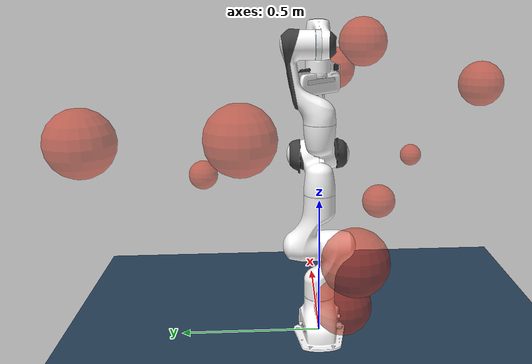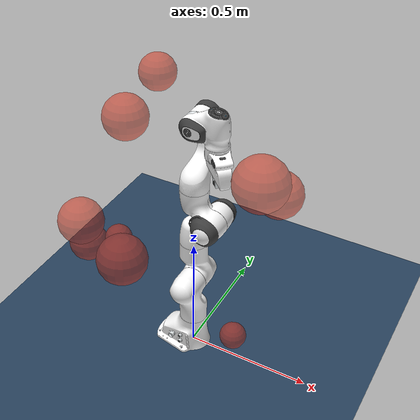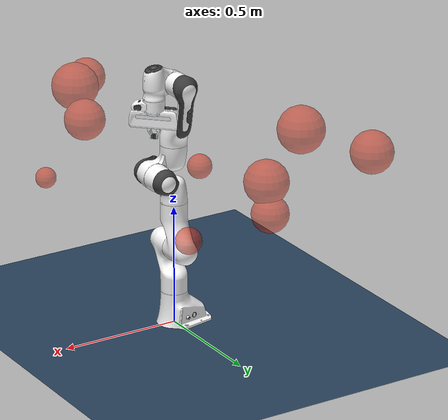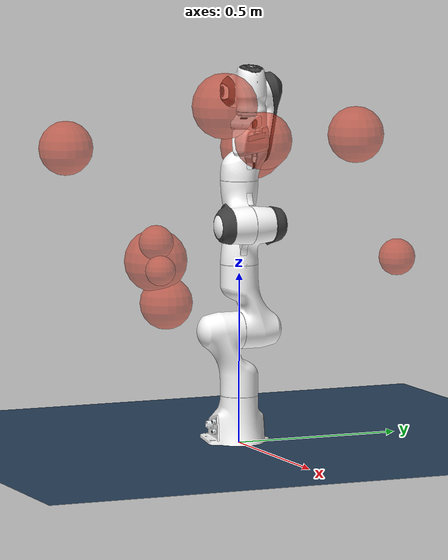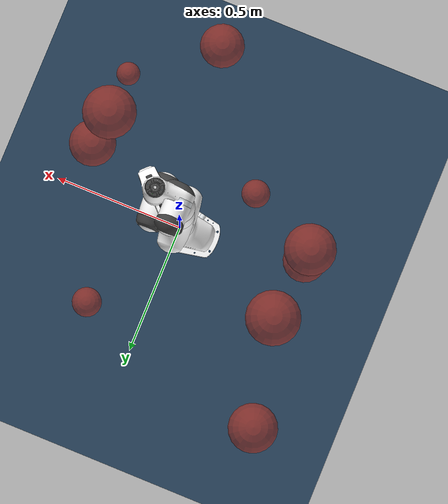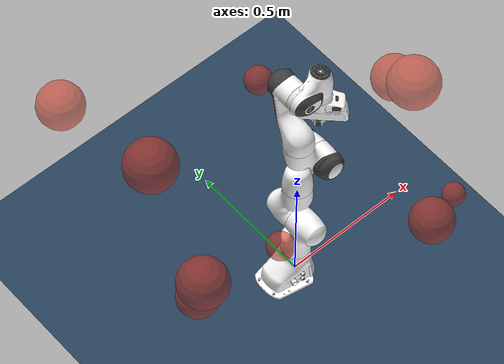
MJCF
<!-- Auto-generated by obstacles/generator.py — do not edit by hand. -->
<mujoco model="panda_with_obstacles">

  <!-- Base scene: floor, lighting, Franka Panda (meshdir override is inside panda_base.xml) -->
  <include file="panda_base.xml"/>

  <!-- Obstacle spheres -->
  <worldbody>
    <geom name="obs_0" type="sphere" size="0.0818" pos="0.3561 -0.0795 0.9227" rgba="0.85 0.2 0.1 0.55" contype="1" conaffinity="1" group="2"/>
    <geom name="obs_1" type="sphere" size="0.0872" pos="-0.5276 0.6183 0.8350" rgba="0.85 0.2 0.1 0.55" contype="1" conaffinity="1" group="2"/>
    <geom name="obs_2" type="sphere" size="0.0956" pos="-0.4835 -0.0645 0.4837" rgba="0.85 0.2 0.1 0.55" contype="1" conaffinity="1" group="2"/>
    <geom name="obs_3" type="sphere" size="0.0536" pos="0.1870 0.4196 0.5491" rgba="0.85 0.2 0.1 0.55" contype="1" conaffinity="1" group="2"/>
    <geom name="obs_4" type="sphere" size="0.0779" pos="0.0710 -0.5670 0.8949" rgba="0.85 0.2 0.1 0.55" contype="1" conaffinity="1" group="2"/>
    <geom name="obs_5" type="sphere" size="0.0936" pos="0.3355 -0.1891 1.0236" rgba="0.85 0.2 0.1 0.55" contype="1" conaffinity="1" group="2"/>
    <geom name="obs_6" type="sphere" size="0.0426" pos="0.3619 -0.3970 0.5700" rgba="0.85 0.2 0.1 0.55" contype="1" conaffinity="1" group="2"/>
    <geom name="obs_7" type="sphere" size="0.0981" pos="-0.4494 0.2380 0.8203" rgba="0.85 0.2 0.1 0.55" contype="1" conaffinity="1" group="2"/>
    <geom name="obs_8" type="sphere" size="0.0514" pos="-0.2264 -0.1684 0.5726" rgba="0.85 0.2 0.1 0.55" contype="1" conaffinity="1" group="2"/>
    <geom name="obs_9" type="sphere" size="0.0802" pos="-0.4811 -0.0316 0.3542" rgba="0.85 0.2 0.1 0.55" contype="1" conaffinity="1" group="2"/>
  </worldbody>

</mujoco>

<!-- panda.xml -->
<mujoco model="panda">
  <compiler angle="radian" meshdir="assets" autolimits="true"/>

  <option integrator="implicitfast"/>

  <default>
    <default class="panda">
      <material specular="0.5" shininess="0.25"/>
      <joint armature="0.1" damping="1" axis="0 0 1" range="-2.8973 2.8973"/>
      <general dyntype="none" biastype="affine" ctrlrange="-2.8973 2.8973" forcerange="-87 87"/>
      <default class="finger">
        <joint axis="0 1 0" type="slide" range="0 0.04"/>
      </default>

      <default class="visual">
        <geom type="mesh" contype="0" conaffinity="0" group="2"/>
      </default>
      <default class="collision">
        <geom type="mesh" group="3"/>
        <default class="fingertip_pad_collision_1">
          <geom type="box" size="0.0085 0.004 0.0085" pos="0 0.0055 0.0445"/>
        </default>
        <default class="fingertip_pad_collision_2">
          <geom type="box" size="0.003 0.002 0.003" pos="0.0055 0.002 0.05"/>
        </default>
        <default class="fingertip_pad_collision_3">
          <geom type="box" size="0.003 0.002 0.003" pos="-0.0055 0.002 0.05"/>
        </default>
        <default class="fingertip_pad_collision_4">
          <geom type="box" size="0.003 0.002 0.0035" pos="0.0055 0.002 0.0395"/>
        </default>
        <default class="fingertip_pad_collision_5">
          <geom type="box" size="0.003 0.002 0.0035" pos="-0.0055 0.002 0.0395"/>
        </default>
      </default>
    </default>
  </default>

  <asset>
    <material class="panda" name="white" rgba="1 1 1 1"/>
    <material class="panda" name="off_white" rgba="0.901961 0.921569 0.929412 1"/>
    <material class="panda" name="black" rgba="0.25 0.25 0.25 1"/>
    <material class="panda" name="green" rgba="0 1 0 1"/>
    <material class="panda" name="light_blue" rgba="0.039216 0.541176 0.780392 1"/>

    <!-- Collision meshes -->
    <mesh name="link0_c" file="link0.stl"/>
    <mesh name="link1_c" file="link1.stl"/>
    <mesh name="link2_c" file="link2.stl"/>
    <mesh name="link3_c" file="link3.stl"/>
    <mesh name="link4_c" file="link4.stl"/>
    <mesh name="link5_c0" file="link5_collision_0.obj"/>
    <mesh name="link5_c1" file="link5_collision_1.obj"/>
    <mesh name="link5_c2" file="link5_collision_2.obj"/>
    <mesh name="link6_c" file="link6.stl"/>
    <mesh name="link7_c" file="link7.stl"/>
    <mesh name="hand_c" file="hand.stl"/>

    <!-- Visual meshes -->
    <mesh file="link0_0.obj"/>
    <mesh file="link0_1.obj"/>
    <mesh file="link0_2.obj"/>
    <mesh file="link0_3.obj"/>
    <mesh file="link0_4.obj"/>
    <mesh file="link0_5.obj"/>
    <mesh file="link0_7.obj"/>
    <mesh file="link0_8.obj"/>
    <mesh file="link0_9.obj"/>
    <mesh file="link0_10.obj"/>
    <mesh file="link0_11.obj"/>
    <mesh file="link1.obj"/>
    <mesh file="link2.obj"/>
    <mesh file="link3_0.obj"/>
    <mesh file="link3_1.obj"/>
    <mesh file="link3_2.obj"/>
    <mesh file="link3_3.obj"/>
    <mesh file="link4_0.obj"/>
    <mesh file="link4_1.obj"/>
    <mesh file="link4_2.obj"/>
    <mesh file="link4_3.obj"/>
    <mesh file="link5_0.obj"/>
    <mesh file="link5_1.obj"/>
    <mesh file="link5_2.obj"/>
    <mesh file="link6_0.obj"/>
    <mesh file="link6_1.obj"/>
    <mesh file="link6_2.obj"/>
    <mesh file="link6_3.obj"/>
    <mesh file="link6_4.obj"/>
    <mesh file="link6_5.obj"/>
    <mesh file="link6_6.obj"/>
    <mesh file="link6_7.obj"/>
    <mesh file="link6_8.obj"/>
    <mesh file="link6_9.obj"/>
    <mesh file="link6_10.obj"/>
    <mesh file="link6_11.obj"/>
    <mesh file="link6_12.obj"/>
    <mesh file="link6_13.obj"/>
    <mesh file="link6_14.obj"/>
    <mesh file="link6_15.obj"/>
    <mesh file="link6_16.obj"/>
    <mesh file="link7_0.obj"/>
    <mesh file="link7_1.obj"/>
    <mesh file="link7_2.obj"/>
    <mesh file="link7_3.obj"/>
    <mesh file="link7_4.obj"/>
    <mesh file="link7_5.obj"/>
    <mesh file="link7_6.obj"/>
    <mesh file="link7_7.obj"/>
    <mesh file="hand_0.obj"/>
    <mesh file="hand_1.obj"/>
    <mesh file="hand_2.obj"/>
    <mesh file="hand_3.obj"/>
    <mesh file="hand_4.obj"/>
    <mesh file="finger_0.obj"/>
    <mesh file="finger_1.obj"/>
  </asset>

  <worldbody>
    <light name="top" pos="0 0 2" mode="trackcom"/>
    <body name="link0" childclass="panda">
      <inertial mass="0.629769" pos="-0.041018 -0.00014 0.049974"
        fullinertia="0.00315 0.00388 0.004285 8.2904e-7 0.00015 8.2299e-6"/>
      <geom mesh="link0_0" material="off_white" class="visual"/>
      <geom mesh="link0_1" material="black" class="visual"/>
      <geom mesh="link0_2" material="off_white" class="visual"/>
      <geom mesh="link0_3" material="black" class="visual"/>
      <geom mesh="link0_4" material="off_white" class="visual"/>
      <geom mesh="link0_5" material="black" class="visual"/>
      <geom mesh="link0_7" material="white" class="visual"/>
      <geom mesh="link0_8" material="white" class="visual"/>
      <geom mesh="link0_9" material="black" class="visual"/>
      <geom mesh="link0_10" material="off_white" class="visual"/>
      <geom mesh="link0_11" material="white" class="visual"/>
      <geom mesh="link0_c" class="collision"/>
      <body name="link1" pos="0 0 0.333">
        <inertial mass="4.970684" pos="0.003875 0.002081 -0.04762"
          fullinertia="0.70337 0.70661 0.0091170 -0.00013900 0.0067720 0.019169"/>
        <joint name="joint1"/>
        <geom material="white" mesh="link1" class="visual"/>
        <geom mesh="link1_c" class="collision"/>
        <body name="link2" quat="1 -1 0 0">
          <inertial mass="0.646926" pos="-0.003141 -0.02872 0.003495"
            fullinertia="0.0079620 2.8110e-2 2.5995e-2 -3.925e-3 1.0254e-2 7.04e-4"/>
          <joint name="joint2" range="-1.7628 1.7628"/>
          <geom material="white" mesh="link2" class="visual"/>
          <geom mesh="link2_c" class="collision"/>
          <body name="link3" pos="0 -0.316 0" quat="1 1 0 0">
            <joint name="joint3"/>
            <inertial mass="3.228604" pos="2.7518e-2 3.9252e-2 -6.6502e-2"
              fullinertia="3.7242e-2 3.6155e-2 1.083e-2 -4.761e-3 -1.1396e-2 -1.2805e-2"/>
            <geom mesh="link3_0" material="white" class="visual"/>
            <geom mesh="link3_1" material="white" class="visual"/>
            <geom mesh="link3_2" material="white" class="visual"/>
            <geom mesh="link3_3" material="black" class="visual"/>
            <geom mesh="link3_c" class="collision"/>
            <body name="link4" pos="0.0825 0 0" quat="1 1 0 0">
              <inertial mass="3.587895" pos="-5.317e-2 1.04419e-1 2.7454e-2"
                fullinertia="2.5853e-2 1.9552e-2 2.8323e-2 7.796e-3 -1.332e-3 8.641e-3"/>
              <joint name="joint4" range="-3.0718 -0.0698"/>
              <geom mesh="link4_0" material="white" class="visual"/>
              <geom mesh="link4_1" material="white" class="visual"/>
              <geom mesh="link4_2" material="black" class="visual"/>
              <geom mesh="link4_3" material="white" class="visual"/>
              <geom mesh="link4_c" class="collision"/>
              <body name="link5" pos="-0.0825 0.384 0" quat="1 -1 0 0">
                <inertial mass="1.225946" pos="-1.1953e-2 4.1065e-2 -3.8437e-2"
                  fullinertia="3.5549e-2 2.9474e-2 8.627e-3 -2.117e-3 -4.037e-3 2.29e-4"/>
                <joint name="joint5"/>
                <geom mesh="link5_0" material="black" class="visual"/>
                <geom mesh="link5_1" material="white" class="visual"/>
                <geom mesh="link5_2" material="white" class="visual"/>
                <geom mesh="link5_c0" class="collision"/>
                <geom mesh="link5_c1" class="collision"/>
                <geom mesh="link5_c2" class="collision"/>
                <body name="link6" quat="1 1 0 0">
                  <inertial mass="1.666555" pos="6.0149e-2 -1.4117e-2 -1.0517e-2"
                    fullinertia="1.964e-3 4.354e-3 5.433e-3 1.09e-4 -1.158e-3 3.41e-4"/>
                  <joint name="joint6" range="-0.0175 3.7525"/>
                  <geom mesh="link6_0" material="off_white" class="visual"/>
                  <geom mesh="link6_1" material="white" class="visual"/>
                  <geom mesh="link6_2" material="black" class="visual"/>
                  <geom mesh="link6_3" material="white" class="visual"/>
                  <geom mesh="link6_4" material="white" class="visual"/>
                  <geom mesh="link6_5" material="white" class="visual"/>
                  <geom mesh="link6_6" material="white" class="visual"/>
                  <geom mesh="link6_7" material="light_blue" class="visual"/>
                  <geom mesh="link6_8" material="light_blue" class="visual"/>
                  <geom mesh="link6_9" material="black" class="visual"/>
                  <geom mesh="link6_10" material="black" class="visual"/>
                  <geom mesh="link6_11" material="white" class="visual"/>
                  <geom mesh="link6_12" material="green" class="visual"/>
                  <geom mesh="link6_13" material="white" class="visual"/>
                  <geom mesh="link6_14" material="black" class="visual"/>
                  <geom mesh="link6_15" material="black" class="visual"/>
                  <geom mesh="link6_16" material="white" class="visual"/>
                  <geom mesh="link6_c" class="collision"/>
                  <body name="link7" pos="0.088 0 0" quat="1 1 0 0">
                    <inertial mass="7.35522e-01" pos="1.0517e-2 -4.252e-3 6.1597e-2"
                      fullinertia="1.2516e-2 1.0027e-2 4.815e-3 -4.28e-4 -1.196e-3 -7.41e-4"/>
                    <joint name="joint7"/>
                    <geom mesh="link7_0" material="white" class="visual"/>
                    <geom mesh="link7_1" material="black" class="visual"/>
                    <geom mesh="link7_2" material="black" class="visual"/>
                    <geom mesh="link7_3" material="black" class="visual"/>
                    <geom mesh="link7_4" material="black" class="visual"/>
                    <geom mesh="link7_5" material="black" class="visual"/>
                    <geom mesh="link7_6" material="black" class="visual"/>
                    <geom mesh="link7_7" material="white" class="visual"/>
                    <geom mesh="link7_c" class="collision"/>
                    <body name="hand" pos="0 0 0.107" quat="0.9238795 0 0 -0.3826834">
                      <inertial mass="0.73" pos="-0.01 0 0.03" diaginertia="0.001 0.0025 0.0017"/>
                      <geom mesh="hand_0" material="off_white" class="visual"/>
                      <geom mesh="hand_1" material="black" class="visual"/>
                      <geom mesh="hand_2" material="black" class="visual"/>
                      <geom mesh="hand_3" material="white" class="visual"/>
                      <geom mesh="hand_4" material="off_white" class="visual"/>
                      <geom mesh="hand_c" class="collision"/>
                      <body name="left_finger" pos="0 0 0.0584">
                        <inertial mass="0.015" pos="0 0 0" diaginertia="2.375e-6 2.375e-6 7.5e-7"/>
                        <joint name="finger_joint1" class="finger"/>
                        <geom mesh="finger_0" material="off_white" class="visual"/>
                        <geom mesh="finger_1" material="black" class="visual"/>
                        <geom mesh="finger_0" class="collision"/>
                        <geom class="fingertip_pad_collision_1"/>
                        <geom class="fingertip_pad_collision_2"/>
                        <geom class="fingertip_pad_collision_3"/>
                        <geom class="fingertip_pad_collision_4"/>
                        <geom class="fingertip_pad_collision_5"/>
                      </body>
                      <body name="right_finger" pos="0 0 0.0584" quat="0 0 0 1">
                        <inertial mass="0.015" pos="0 0 0" diaginertia="2.375e-6 2.375e-6 7.5e-7"/>
                        <joint name="finger_joint2" class="finger"/>
                        <geom mesh="finger_0" material="off_white" class="visual"/>
                        <geom mesh="finger_1" material="black" class="visual"/>
                        <geom mesh="finger_0" class="collision"/>
                        <geom class="fingertip_pad_collision_1"/>
                        <geom class="fingertip_pad_collision_2"/>
                        <geom class="fingertip_pad_collision_3"/>
                        <geom class="fingertip_pad_collision_4"/>
                        <geom class="fingertip_pad_collision_5"/>
                      </body>
                    </body>
                  </body>
                </body>
              </body>
            </body>
          </body>
        </body>
      </body>
    </body>
  </worldbody>

  <tendon>
    <fixed name="split">
      <joint joint="finger_joint1" coef="0.5"/>
      <joint joint="finger_joint2" coef="0.5"/>
    </fixed>
  </tendon>

  <equality>
    <joint joint1="finger_joint1" joint2="finger_joint2" solimp="0.95 0.99 0.001" solref="0.005 1"/>
  </equality>

  <!-- Direct torque actuators (ctrl = joint torque [Nm]).
       Hardware limits: joints 1-4 → ±87 Nm, joints 5-7 → ±12 Nm.
       The gripper is left passive (no actuator) for simplicity. -->
  <actuator>
    <motor name="act1" joint="joint1" gear="1" ctrllimited="true" ctrlrange="-87  87"/>
    <motor name="act2" joint="joint2" gear="1" ctrllimited="true" ctrlrange="-87  87"/>
    <motor name="act3" joint="joint3" gear="1" ctrllimited="true" ctrlrange="-87  87"/>
    <motor name="act4" joint="joint4" gear="1" ctrllimited="true" ctrlrange="-87  87"/>
    <motor name="act5" joint="joint5" gear="1" ctrllimited="true" ctrlrange="-12  12"/>
    <motor name="act6" joint="joint6" gear="1" ctrllimited="true" ctrlrange="-12  12"/>
    <motor name="act7" joint="joint7" gear="1" ctrllimited="true" ctrlrange="-12  12"/>
  </actuator>

  <keyframe>
    <!-- Home pose — standard Franka ready configuration.
         qpos has 9 values: 7 arm joints + 2 finger joints.
         ctrl has 7 values: one per torque actuator (zero at rest). -->
    <key name="home" qpos="0 0 0 -1.57079 0 1.57079 -0.7853 0.04 0.04"
                     ctrl="0 0 0 0 0 0 0"/>
    <key name="zero" qpos="0 0 0  0       0 0       0      0.04 0.04"
                     ctrl="0 0 0 0 0 0 0"/>
  </keyframe>

  <contact>
    <exclude body1="link0" body2="link1"/>
  </contact>
</mujoco>

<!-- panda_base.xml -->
<mujoco model="panda scene">
  <include file="../assets/mujoco_menagerie/franka_emika_panda/panda.xml"/>

  <!-- Override meshdir so mesh paths resolve correctly when this scene is the
       top-level file (meshdir is always resolved from the top-level directory). -->
  <compiler meshdir="../assets/mujoco_menagerie/franka_emika_panda/assets"/>

  <statistic center="0.3 0 0.4" extent="1"/>

  <visual>
    <headlight diffuse="0.6 0.6 0.6" ambient="0.3 0.3 0.3" specular="0 0 0"/>
    <rgba haze="0.15 0.25 0.35 1"/>
    <global azimuth="120" elevation="-20"/>
  </visual>

  <asset>
    <texture type="skybox" builtin="gradient" rgb1="0.3 0.5 0.7" rgb2="0 0 0" width="512" height="3072"/>
    <texture type="2d" name="groundplane" builtin="checker" mark="edge" rgb1="0.2 0.3 0.4" rgb2="0.1 0.2 0.3"
      markrgb="0.8 0.8 0.8" width="300" height="300"/>
    <material name="groundplane" texture="groundplane" texuniform="true" texrepeat="5 5" reflectance="0.2"/>
  </asset>

  <worldbody>
    <light pos="0 0 1.5" dir="0 0 -1" directional="true"/>
    <geom name="floor" size="0 0 0.05" type="plane" material="groundplane"/>
  </worldbody>
</mujoco>
